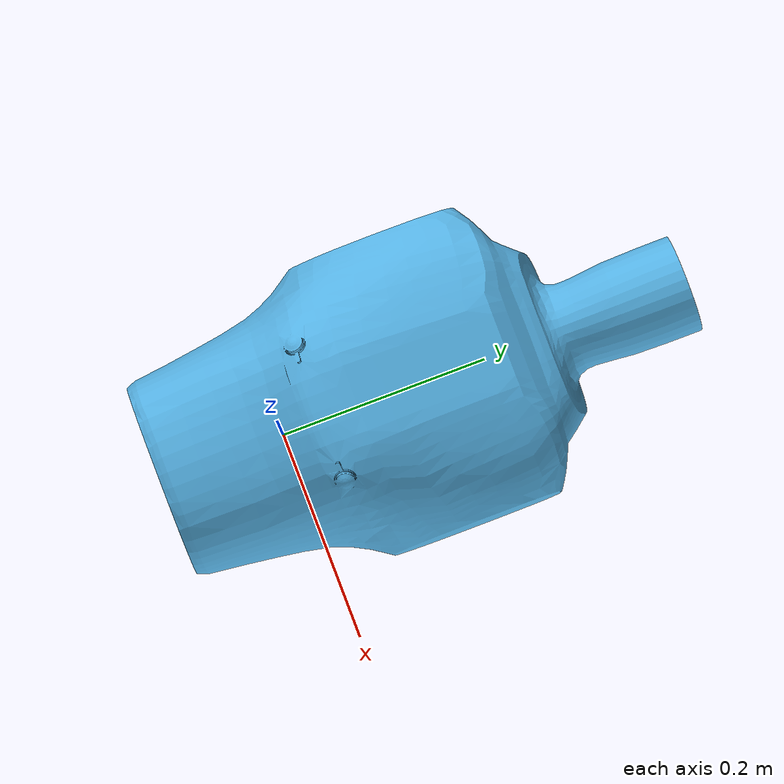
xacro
<?xml version="1.0" ?>
<robot name="galbot_one_golf_torso" xmlns:xacro="http://www.ros.org/wiki/xacro">
    <xacro:arg name="standalone" default="true"/>

    <xacro:if value="$(arg standalone)">
        <link name="leg_end_effector_mount_link"/>
    </xacro:if>

    <joint name="torso_joint" type="fixed">
        <parent link="leg_end_effector_mount_link"/>
        <child link="torso_base_link"/>
    </joint>

    <link name="torso_base_link">
        <inertial>
            <origin xyz="0.0053 0.1249 -0.00088"/>
            <mass value="6.83"/>
            <inertia ixx="0.12762873" ixy="0.00338332" ixz="0.00152351" iyy="0.04560482" iyz="0.0004879"
                     izz="0.13469248"/>
        </inertial>
        <visual>
            <geometry>
                <mesh filename="package://galbot_one_golf_description/meshes/visual/torso/torso.glb"/>
            </geometry>
        </visual>
        <collision>
            <geometry>
                <mesh filename="package://galbot_one_golf_description/meshes/collision/torso/torso_collision_01.stl"/>
            </geometry>
        </collision>
        <collision>
            <geometry>
                <mesh filename="package://galbot_one_golf_description/meshes/collision/torso/torso_collision_02.stl"/>
            </geometry>
        </collision>
    </link>
</robot>
